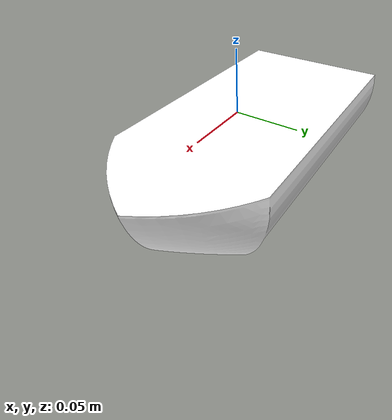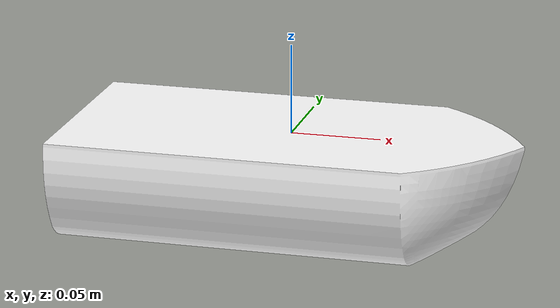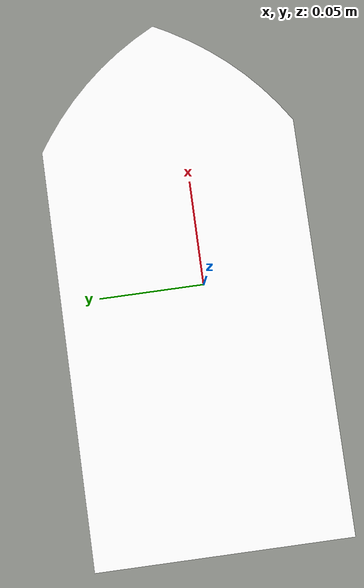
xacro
<?xml version="1.0" ?>
<robot name="aries" xmlns:xacro="http://www.ros.org/wiki/xacro">
  <!--                            BOAT HULL                                  -->
  <link name="boat_hull">
    <visual name="visual">
      <geometry>
        <mesh filename="file://$(find gazebo_simulation)/urdf/collada/boat_hull_L.dae" />
      </geometry>
    </visual>

    <inertial>
       <mass value="0.8" />
       <inertia
         ixx="0.0000020778656"
         ixy="-0.000000089099184"
         ixz="0.0000000000189384648"
         iyy="0.00000824124569"
         iyz="0.0000000000531947773"
         izz="0.0000070840279"
       />
    </inertial>

    <buoyancy>
      <compensation>2.60</compensation>
      <origin xyz="0 0 0.0"/>
      <limit radius="0.031"/>
      <damping xyz="60 100 100"/>
    </buoyancy>
  </link>

  <gazebo>
    <static>false</static>

    <plugin name="freefloating_gazebo_control" filename="libfreefloating_gazebo_control.so">
        <switchService>switch</switchService>
        <updateRate>100</updateRate>
        <link>boat_hull</link>
        <bodyCommandTopic>body_command</bodyCommandTopic>
      <jointCommandTopic>joint_command</jointCommandTopic>
      <thruster>
        <map>-1 0 0 0 0 -0.35</map>
        <effort>30</effort>
      </thruster>
      <thruster>
        <map>-1 0 0 0 0 0.35</map>
        <effort>30</effort>
      </thruster>
      <thruster>
        <map>0 1 0 0 0 0</map>
        <effort>30</effort>
      </thruster>
      <thruster>
        <map>0 0 -1 0 0 0</map>
        <effort>30</effort>
      </thruster>
      <thruster>
        <map>0 0 -1 0 1.1 0</map>
        <effort>30</effort>
      </thruster>
    </plugin>
  </gazebo>

</robot>
